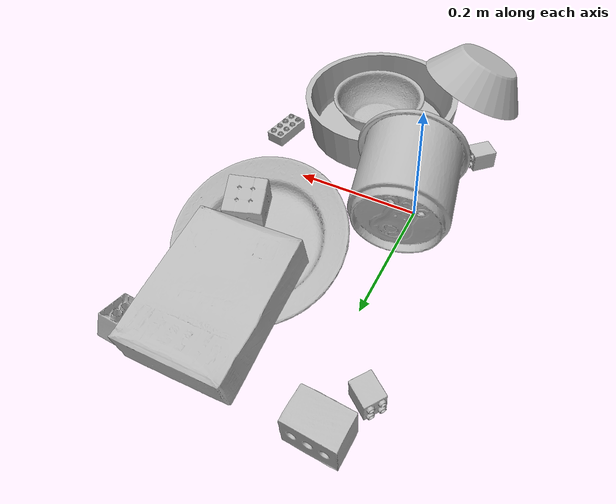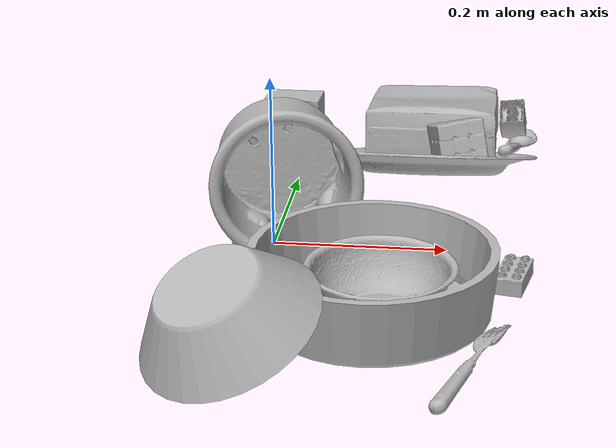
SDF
<sdf version="1.4">
  <world name="default">
    <light name="light1" type="point">
      <pose>0 0 1 0 0 0</pose>
      <diffuse>3 3 3 1</diffuse>
      <specular>3 3 3 1</specular>
    </light>
    <light name="light2" type="point">
      <pose>0 0.5 2 0 0 0</pose>
      <diffuse>1 1 1 1</diffuse>
      <specular>1 1 1 1</specular>
    </light>
    <light name="light3" type="point">
      <pose>0 0.5 2 0 0 0</pose>
      <diffuse>3 3 3 1</diffuse>
      <specular>3 3 3 1</specular>
    </light>
    <scene>
      <ambient>0.7 0.7 0.7</ambient>
    </scene>
    <model name="plate1">
      <link name="link_plate1">
        <collision name="default">
          <geometry>
            <mesh>
              <uri>model://plate/collision_meshes/collision.obj</uri>
              <scale>1.0 1.0 1.0</scale>
            </mesh>
          </geometry>
          <surface>
            <friction>
              <ode>
                <mu>0.5</mu>
                <mu2>0.5</mu2>
              </ode>
            </friction>
          <contact>
        <ode>
            <max_vel>0</max_vel>
            <min_depth>0.0001</min_depth>
            <kp>1e8</kp>
        </ode>
    </contact></surface>
        </collision>
        <visual name="default">
          <geometry>
            <mesh>
              <uri>model://plate/visual_meshes/visual.dae</uri>
              <scale>1.0 1.0 1.0</scale>
            </mesh>
          </geometry>
        </visual>
        <inertial>
          <mass>0.14927330613136292</mass>
          <pose>-0.0006044599576853216 0.00027825793949887156 -0.0010561984963715076 0.0022187657602494516 -0.0032254905015569333 0.45261542380491104</pose>
          <inertia>
            <ixx>0.0006983033</ixx>
            <iyy>0.0006916243</iyy>
            <izz>0.0013657772</izz>
            <ixy>0</ixy>
            <ixz>0</ixz>
            <iyz>0</iyz>
          </inertia>
        </inertial>
      </link>
      <pose>0.16863735020160675 0.175556018948555 0.03927431255578995 0.11731764596471125 0.3186139972678425 1.9614603795159182</pose>
    </model>
    <model name="plate2">
      <link name="link_plate2">
        <collision name="default">
          <geometry>
            <mesh>
              <uri>model://pan_tefal/collision_meshes/collision.obj</uri>
              <scale>1.0 1.0 1.0</scale>
            </mesh>
          </geometry>
          <surface>
            <friction>
              <ode>
                <mu>0.5</mu>
                <mu2>0.5</mu2>
              </ode>
            </friction>
          <contact>
        <ode>
            <max_vel>0</max_vel>
            <min_depth>0.0001</min_depth>
            <kp>1e8</kp>
        </ode>
    </contact></surface>
        </collision>
        <visual name="default">
          <geometry>
            <mesh>
              <uri>model://pan_tefal/visual_meshes/visual.dae</uri>
              <scale>1.0 1.0 1.0</scale>
            </mesh>
          </geometry>
        </visual>
        <inertial>
          <mass>1.1722657680511475</mass>
          <pose>-0.00018002268916461617 3.2786720112198964e-05 -0.008514933288097382 0.0008190189984333748 -0.0003301390782503885 -0.3318520141268409</pose>
          <inertia>
            <ixx>0.008092094</ixx>
            <iyy>0.008144264</iyy>
            <izz>0.014895983</izz>
            <ixy>0</ixy>
            <ixz>0</ixz>
            <iyz>0</iyz>
          </inertia>
        </inertial>
      </link>
      <pose>0.13362640142440796 -0.17210091650485992 0.038049984723329544 -6.25787884898296e-07 -4.511111097036136e-08 0.9445672244485133</pose>
    </model>
    <model name="bowl1">
      <link name="link_bowl1">
        <collision name="default">
          <geometry>
            <mesh>
              <uri>model://bowl_a/collision_meshes/collision.obj</uri>
              <scale>1.0 1.0 1.0</scale>
            </mesh>
          </geometry>
          <surface>
            <friction>
              <ode>
                <mu>0.5</mu>
                <mu2>0.5</mu2>
              </ode>
            </friction>
          <contact>
        <ode>
            <max_vel>0</max_vel>
            <min_depth>0.0001</min_depth>
            <kp>1e8</kp>
        </ode>
    </contact></surface>
        </collision>
        <visual name="default">
          <geometry>
            <mesh>
              <uri>model://bowl_a/visual_meshes/visual.dae</uri>
              <scale>1.0 1.0 1.0</scale>
            </mesh>
          </geometry>
        </visual>
        <inertial>
          <mass>0.2988097667694092</mass>
          <pose>0.0002786743571050465 4.731365334009752e-05 -0.0013765293406322598 -0.0009805349169279892 -0.001093820822183951 -0.19123530183129564</pose>
          <inertia>
            <ixx>0.00085072505</ixx>
            <iyy>0.00085594796</iyy>
            <izz>0.0015130473</izz>
            <ixy>0</ixy>
            <ixz>0</ixz>
            <iyz>0</iyz>
          </inertia>
        </inertial>
      </link>
      <pose>-0.003260853234678507 -0.31171104311943054 0.0705568715929985 2.675433403144922 0.032806760937418335 2.4268137228281663</pose>
    </model>
    <model name="bowl2">
      <link name="link_bowl2">
        <collision name="default">
          <geometry>
            <mesh>
              <uri>model://bowl/collision_meshes/collision.obj</uri>
              <scale>1.0 1.0 1.0</scale>
            </mesh>
          </geometry>
          <surface>
            <friction>
              <ode>
                <mu>0.5</mu>
                <mu2>0.5</mu2>
              </ode>
            </friction>
          <contact>
        <ode>
            <max_vel>0</max_vel>
            <min_depth>0.0001</min_depth>
            <kp>1e8</kp>
        </ode>
    </contact></surface>
        </collision>
        <visual name="default">
          <geometry>
            <mesh>
              <uri>model://bowl/visual_meshes/visual.dae</uri>
              <scale>1.0 1.0 1.0</scale>
            </mesh>
          </geometry>
        </visual>
        <inertial>
          <mass>0.05087859928607941</mass>
          <pose>0.00020445352129172534 -0.001030206447467208 -0.0008042655535973608 -0.015764084400621287 0.014546790156403148 0.7140405806030785</pose>
          <inertia>
            <ixx>0.0001168722</ixx>
            <iyy>0.00011426082</iyy>
            <izz>0.0001966192</izz>
            <ixy>0</ixy>
            <ixz>0</ixz>
            <iyz>0</iyz>
          </inertia>
        </inertial>
      </link>
      <pose>0.14273636043071747 -0.18231937289237976 0.03550107404589653 -0.0007688852815546732 0.0021901406773889246 -1.0466257479262204</pose>
    </model>
    <model name="silverware1">
      <link name="link_silverware1">
        <collision name="default">
          <geometry>
            <mesh>
              <uri>model://spoon/collision_meshes/collision.obj</uri>
              <scale>1.0 1.0 1.0</scale>
            </mesh>
          </geometry>
          <surface>
            <friction>
              <ode>
                <mu>0.5</mu>
                <mu2>0.5</mu2>
              </ode>
            </friction>
          <contact>
        <ode>
            <max_vel>0</max_vel>
            <min_depth>0.0001</min_depth>
            <kp>1e8</kp>
        </ode>
    </contact></surface>
        </collision>
        <visual name="default">
          <geometry>
            <mesh>
              <uri>model://spoon/visual_meshes/visual.dae</uri>
              <scale>1.0 1.0 1.0</scale>
            </mesh>
          </geometry>
        </visual>
        <inertial>
          <mass>0.031133336946368217</mass>
          <pose>-0.005526311229914427 -0.001603417214937508 -0.000727165665011853 0.03521724372111935 -0.03906583963771688 0.006150613707428126</pose>
          <inertia>
            <ixx>1.7316867e-06</ixx>
            <iyy>0.00011846133</iyy>
            <izz>0.00011931534</izz>
            <ixy>0</ixy>
            <ixz>0</ixz>
            <iyz>0</iyz>
          </inertia>
        </inertial>
      </link>
      <pose>0.2678060233592987 0.28652051091194153 0.024375107139348984 -0.2504027427228104 0.2981666178818123 1.4417700514109437</pose>
    </model>
    <model name="box1">
      <link name="link_box1">
        <collision name="default">
          <geometry>
            <mesh>
              <uri>model://cracker_box/collision_meshes/collision.obj</uri>
              <scale>1.0 1.0 1.0</scale>
            </mesh>
          </geometry>
          <surface>
            <friction>
              <ode>
                <mu>0.5</mu>
                <mu2>0.5</mu2>
              </ode>
            </friction>
          <contact>
        <ode>
            <max_vel>0</max_vel>
            <min_depth>0.0001</min_depth>
            <kp>1e8</kp>
        </ode>
    </contact></surface>
        </collision>
        <visual name="default">
          <geometry>
            <mesh>
              <uri>model://cracker_box/visual_meshes/visual.dae</uri>
              <scale>1.0 1.0 1.0</scale>
            </mesh>
          </geometry>
        </visual>
        <inertial>
          <mass>2.900710344314575</mass>
          <pose>0.0009464158210903406 0.00025434247800149024 -0.0017029534792527556 -0.0003162075379034469 -0.011106488669169442 0.0025467947685016775</pose>
          <inertia>
            <ixx>0.007378111</ixx>
            <iyy>0.012182713</iyy>
            <izz>0.01738585</izz>
            <ixy>0</ixy>
            <ixz>0</ixz>
            <iyz>0</iyz>
          </inertia>
        </inertial>
      </link>
      <pose>0.16430158913135529 0.290467232465744 0.05045591667294502 -0.0029930072658763737 -0.16043271887836555 -1.551535581839171</pose>
    </model>
    <model name="box2">
      <link name="link_box2">
        <collision name="default">
          <geometry>
            <mesh>
              <uri>model://rubiks_cube/collision_meshes/collision.obj</uri>
              <scale>1.0 1.0 1.0</scale>
            </mesh>
          </geometry>
          <surface>
            <friction>
              <ode>
                <mu>0.5</mu>
                <mu2>0.5</mu2>
              </ode>
            </friction>
          <contact>
        <ode>
            <max_vel>0</max_vel>
            <min_depth>0.0001</min_depth>
            <kp>1e8</kp>
        </ode>
    </contact></surface>
        </collision>
        <visual name="default">
          <geometry>
            <mesh>
              <uri>model://rubiks_cube/visual_meshes/visual.dae</uri>
              <scale>1.0 1.0 1.0</scale>
            </mesh>
          </geometry>
        </visual>
        <inertial>
          <mass>0.28670012950897217</mass>
          <pose>2.6721039830590598e-05 5.2569666877388954e-05 -7.264316082000732e-06 -0.05467310906580907 -0.09814045067101686 -0.03445712671449578</pose>
          <inertia>
            <ixx>0.00015842107</ixx>
            <iyy>0.0001576823</iyy>
            <izz>0.00015973386</izz>
            <ixy>0</ixy>
            <ixz>0</ixz>
            <iyz>0</iyz>
          </inertia>
        </inertial>
      </link>
      <pose>0.2030353546142578 0.14858819544315338 0.07387761026620865 -2.8241040589919457 0.10173572032888908 -2.8183137734397783</pose>
    </model>
    <model name="cup1">
      <link name="link_cup1">
        <collision name="default">
          <geometry>
            <mesh>
              <uri>model://g_cups/collision_meshes/collision.obj</uri>
              <scale>2.0 2.0 2.0</scale>
            </mesh>
          </geometry>
          <surface>
            <friction>
              <ode>
                <mu>0.5</mu>
                <mu2>0.5</mu2>
              </ode>
            </friction>
          <contact>
        <ode>
            <max_vel>0</max_vel>
            <min_depth>0.0001</min_depth>
            <kp>1e8</kp>
        </ode>
    </contact></surface>
        </collision>
        <visual name="default">
          <geometry>
            <mesh>
              <uri>model://g_cups/visual_meshes/visual.dae</uri>
              <scale>2.0 2.0 2.0</scale>
            </mesh>
          </geometry>
        </visual>
        <inertial>
          <mass>0.7979594469070435</mass>
          <pose>-0.001589252962730825 -8.413367322646081e-05 -0.004265873227268457 -0.2138242542550812 -0.3141046905663657 0.3112069095441374</pose>
          <inertia>
            <ixx>0.0037255902</ixx>
            <iyy>0.003712916</iyy>
            <izz>0.0038590694</izz>
            <ixy>0</ixy>
            <ixz>0</ixz>
            <iyz>0</iyz>
          </inertia>
        </inertial>
      </link>
      <pose>0.008968036621809006 0.024919018149375916 0.08004987984895706 -1.4662834502336404 0.23721344368214925 -2.9012987935559686</pose>
    </model>
    <model name="silverware2">
      <link name="link_silverware2">
        <collision name="default">
          <geometry>
            <mesh>
              <uri>model://fork/collision_meshes/collision.obj</uri>
              <scale>1.0 1.0 1.0</scale>
            </mesh>
          </geometry>
          <surface>
            <friction>
              <ode>
                <mu>0.5</mu>
                <mu2>0.5</mu2>
              </ode>
            </friction>
          <contact>
        <ode>
            <max_vel>0</max_vel>
            <min_depth>0.0001</min_depth>
            <kp>1e8</kp>
        </ode>
    </contact></surface>
        </collision>
        <visual name="default">
          <geometry>
            <mesh>
              <uri>model://fork/visual_meshes/visual.dae</uri>
              <scale>1.0 1.0 1.0</scale>
            </mesh>
          </geometry>
        </visual>
        <inertial>
          <mass>0.026295984163880348</mass>
          <pose>-0.02957003563642502 0.0004658822435885668 0.0003218861238565296 -0.013551585765180826 -0.010977835012843383 0.014453895551669751</pose>
          <inertia>
            <ixx>9.2182285e-07</ixx>
            <iyy>6.865125e-05</iyy>
            <izz>6.9063564e-05</izz>
            <ixy>0</ixy>
            <ixz>0</ixz>
            <iyz>0</iyz>
          </inertia>
        </inertial>
      </link>
      <pose>0.24139291048049927 -0.28759321570396423 0.008925966918468475 2.8122592826132897 -0.010496320311514911 1.292322181710145</pose>
    </model>
    <model name="silverware3">
      <link name="link_silverware3">
        <collision name="default">
          <geometry>
            <mesh>
              <uri>model://knife/collision_meshes/collision.obj</uri>
              <scale>1.0 1.0 1.0</scale>
            </mesh>
          </geometry>
          <surface>
            <friction>
              <ode>
                <mu>0.5</mu>
                <mu2>0.5</mu2>
              </ode>
            </friction>
          <contact>
        <ode>
            <max_vel>0</max_vel>
            <min_depth>0.0001</min_depth>
            <kp>1e8</kp>
        </ode>
    </contact></surface>
        </collision>
        <visual name="default">
          <geometry>
            <mesh>
              <uri>model://knife/visual_meshes/visual.dae</uri>
              <scale>1.0 1.0 1.0</scale>
            </mesh>
          </geometry>
        </visual>
        <inertial>
          <mass>0.018686598166823387</mass>
          <pose>-0.023785265162587166 0.001527512213215232 5.06201722600963e-05 0.0730586728597059 0.01724841756758314 -0.007409823953988089</pose>
          <inertia>
            <ixx>5.3040145e-07</ixx>
            <iyy>7.1790884e-05</iyy>
            <izz>7.1961695e-05</izz>
            <ixy>0</ixy>
            <ixz>0</ixz>
            <iyz>0</iyz>
          </inertia>
        </inertial>
      </link>
      <pose>-0.02860090509057045 -0.054504960775375366 0.005810706876218319 2.88935389740078 0.02591458951644357 1.768102695059243</pose>
    </model>
    <model name="toy1">
      <link name="link_toy1">
        <collision name="default">
          <geometry>
            <mesh>
              <uri>model://d_lego_duplo/collision_meshes/collision.obj</uri>
              <scale>1.0 1.0 1.0</scale>
            </mesh>
          </geometry>
          <surface>
            <friction>
              <ode>
                <mu>0.5</mu>
                <mu2>0.5</mu2>
              </ode>
            </friction>
          <contact>
        <ode>
            <max_vel>0</max_vel>
            <min_depth>0.0001</min_depth>
            <kp>1e8</kp>
        </ode>
    </contact></surface>
        </collision>
        <visual name="default">
          <geometry>
            <mesh>
              <uri>model://d_lego_duplo/visual_meshes/visual.dae</uri>
              <scale>1.0 1.0 1.0</scale>
            </mesh>
          </geometry>
        </visual>
        <inertial>
          <mass>0.057973701506853104</mass>
          <pose>0.002830564510077238 0.0001636612432776019 0.000858980929479003 0.08010949801199577 -0.38355255965562274 0.0010296774355632512</pose>
          <inertia>
            <ixx>1.1222855e-05</ixx>
            <iyy>1.5928275e-05</iyy>
            <izz>1.5360585e-05</izz>
            <ixy>0</ixy>
            <ixz>0</ixz>
            <iyz>0</iyz>
          </inertia>
        </inertial>
      </link>
      <pose>0.2649271786212921 0.3616209626197815 0.027037471532821655 3.020375840621016 -0.3208695300214682 1.5930781030759933</pose>
    </model>
    <model name="toy2">
      <link name="link_toy2">
        <collision name="default">
          <geometry>
            <mesh>
              <uri>model://c_lego_duplo/collision_meshes/collision.obj</uri>
              <scale>1.0 1.0 1.0</scale>
            </mesh>
          </geometry>
          <surface>
            <friction>
              <ode>
                <mu>0.5</mu>
                <mu2>0.5</mu2>
              </ode>
            </friction>
          <contact>
        <ode>
            <max_vel>0</max_vel>
            <min_depth>0.0001</min_depth>
            <kp>1e8</kp>
        </ode>
    </contact></surface>
        </collision>
        <visual name="default">
          <geometry>
            <mesh>
              <uri>model://c_lego_duplo/visual_meshes/visual.dae</uri>
              <scale>1.0 1.0 1.0</scale>
            </mesh>
          </geometry>
        </visual>
        <inertial>
          <mass>0.03295557200908661</mass>
          <pose>0.00031645927811041474 0.0001946454867720604 0.0010453149443492293 -0.011520797378012098 0.005900082234647494 0.03110035414112205</pose>
          <inertia>
            <ixx>1.2681916e-05</ixx>
            <iyy>4.0510618e-06</iyy>
            <izz>1.4820123e-05</izz>
            <ixy>0</ixy>
            <ixz>0</ixz>
            <iyz>0</iyz>
          </inertia>
        </inertial>
      </link>
      <pose>0.27868515253067017 -0.08221682906150818 0.011981489136815071 0.008019327849262042 -0.002091540979359079 2.940707461424692</pose>
    </model>
    <model name="toy3">
      <link name="link_toy3">
        <collision name="default">
          <geometry>
            <mesh>
              <uri>model://foam_brick/collision_meshes/collision.obj</uri>
              <scale>1.0 1.0 1.0</scale>
            </mesh>
          </geometry>
          <surface>
            <friction>
              <ode>
                <mu>0.5</mu>
                <mu2>0.5</mu2>
              </ode>
            </friction>
          <contact>
        <ode>
            <max_vel>0</max_vel>
            <min_depth>0.0001</min_depth>
            <kp>1e8</kp>
        </ode>
    </contact></surface>
        </collision>
        <visual name="default">
          <geometry>
            <mesh>
              <uri>model://foam_brick/visual_meshes/visual.dae</uri>
              <scale>1.0 1.0 1.0</scale>
            </mesh>
          </geometry>
        </visual>
        <inertial>
          <mass>0.2026180773973465</mass>
          <pose>-0.00025224717683158815 0.0003458433202467859 -0.0002532101352699101 -0.2940154265809752 0.017274439844268085 -0.0007449877964386924</pose>
          <inertia>
            <ixx>8.850737e-05</ixx>
            <iyy>0.00014130655</iyy>
            <izz>0.00014310238</izz>
            <ixy>0</ixy>
            <ixz>0</ixz>
            <iyz>0</iyz>
          </inertia>
        </inertial>
      </link>
      <pose>-0.030567875131964684 0.37241026759147644 0.02626490406692028 -1.5819340111597626 -0.012729118725265429 -0.048155851813877146</pose>
    </model>
    <model name="toy4">
      <link name="link_toy4">
        <collision name="default">
          <geometry>
            <mesh>
              <uri>model://f_lego_duplo/collision_meshes/collision.obj</uri>
              <scale>1.0 1.0 1.0</scale>
            </mesh>
          </geometry>
          <surface>
            <friction>
              <ode>
                <mu>0.5</mu>
                <mu2>0.5</mu2>
              </ode>
            </friction>
          <contact>
        <ode>
            <max_vel>0</max_vel>
            <min_depth>0.0001</min_depth>
            <kp>1e8</kp>
        </ode>
    </contact></surface>
        </collision>
        <visual name="default">
          <geometry>
            <mesh>
              <uri>model://f_lego_duplo/visual_meshes/visual.dae</uri>
              <scale>1.0 1.0 1.0</scale>
            </mesh>
          </geometry>
        </visual>
        <inertial>
          <mass>0.026114314794540405</mass>
          <pose>2.3694528863416053e-05 0.00013393153494689614 0.001883787801489234 0.02983849389432246 -0.014425286210530337 -0.675657453158783</pose>
          <inertia>
            <ixx>5.5180976e-06</ixx>
            <iyy>5.5672576e-06</iyy>
            <izz>4.7899434e-06</izz>
            <ixy>0</ixy>
            <ixz>0</ixz>
            <iyz>0</iyz>
          </inertia>
        </inertial>
      </link>
      <pose>-0.056575898081064224 -0.15626204013824463 0.016206970438361168 1.5790235046330057 9.239047158706859e-05 2.322667118562167</pose>
    </model>
    <model name="toy5">
      <link name="link_toy5">
        <collision name="default">
          <geometry>
            <mesh>
              <uri>model://b_lego_duplo/collision_meshes/collision.obj</uri>
              <scale>1.0 1.0 1.0</scale>
            </mesh>
          </geometry>
          <surface>
            <friction>
              <ode>
                <mu>0.5</mu>
                <mu2>0.5</mu2>
              </ode>
            </friction>
          <contact>
        <ode>
            <max_vel>0</max_vel>
            <min_depth>0.0001</min_depth>
            <kp>1e8</kp>
        </ode>
    </contact></surface>
        </collision>
        <visual name="default">
          <geometry>
            <mesh>
              <uri>model://b_lego_duplo/visual_meshes/visual.dae</uri>
              <scale>1.0 1.0 1.0</scale>
            </mesh>
          </geometry>
        </visual>
        <inertial>
          <mass>0.0471348837018013</mass>
          <pose>-0.00011053068010369316 -9.152583515970036e-06 0.0019294292433187366 -0.037494549971735465 -0.026354388193955382 0.45188781154390406</pose>
          <inertia>
            <ixx>9.646508e-06</ixx>
            <iyy>9.711356e-06</iyy>
            <izz>8.594722e-06</izz>
            <ixy>0</ixy>
            <ixz>0</ixz>
            <iyz>0</iyz>
          </inertia>
        </inertial>
      </link>
      <pose>-0.06464515626430511 0.3117128908634186 0.016152411699295044 -3.1206283309361473 1.562460162036999 -0.6010717294305707</pose>
    </model>
  <physics type="ode">
      <max_contacts>50</max_contacts>
      <ode>
        <solver>
          <type>quick</type>
          <iters>75</iters>
        </solver>
        <constraints>
          <contact_max_correcting_vel>0</contact_max_correcting_vel>
          <contact_surface_layer>0</contact_surface_layer>
        </constraints>
      </ode>
    </physics></world>
</sdf>
